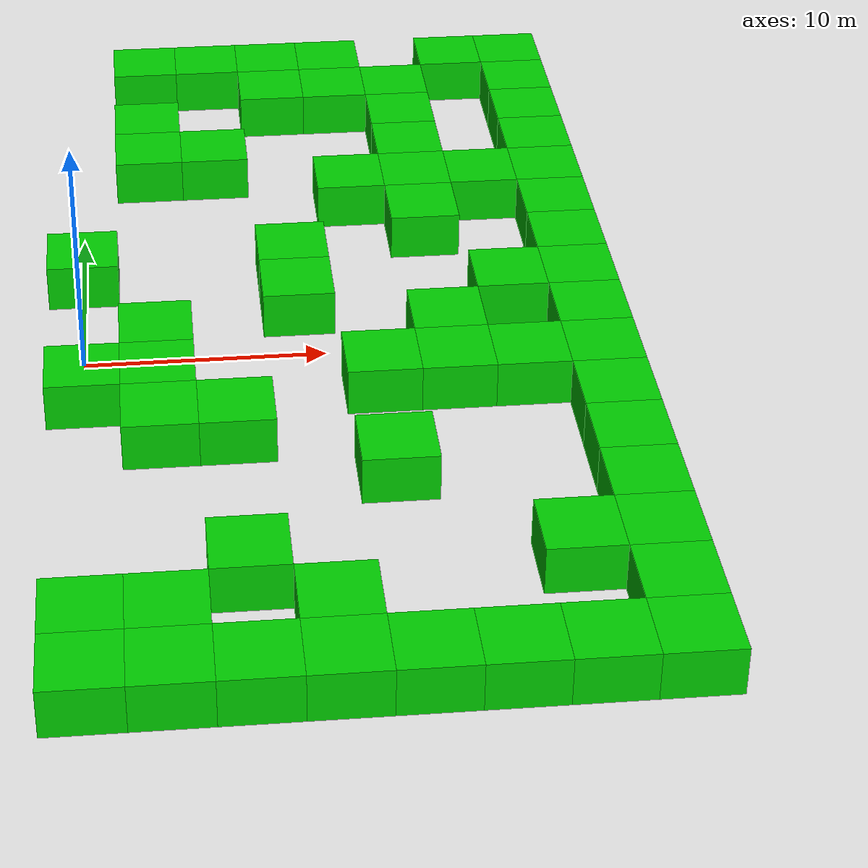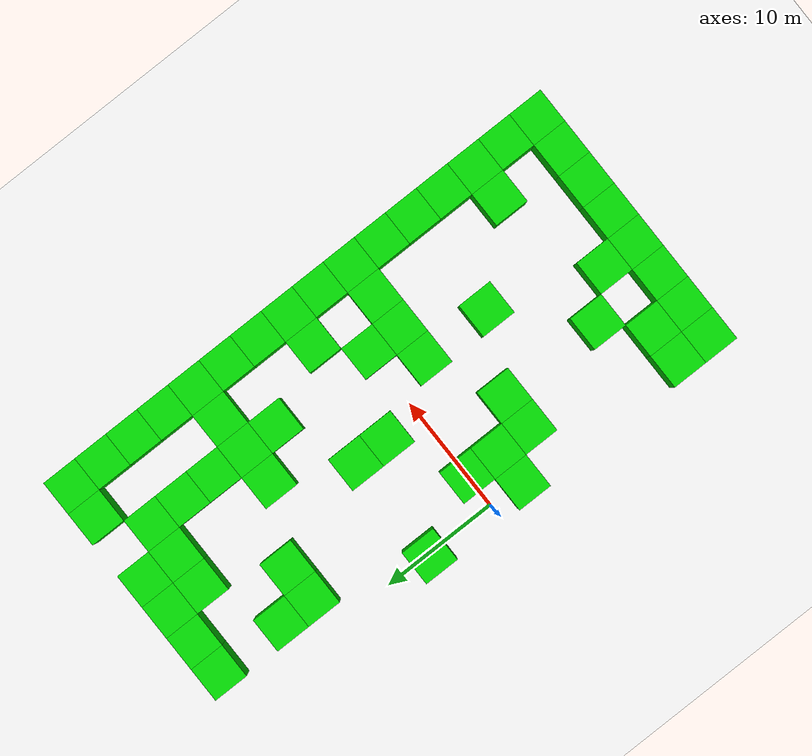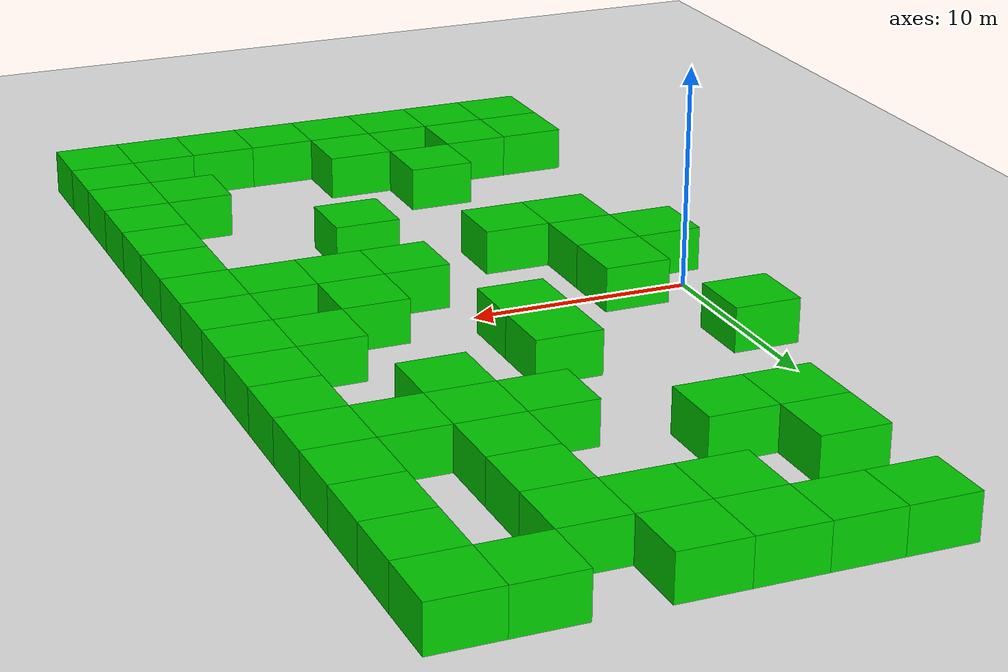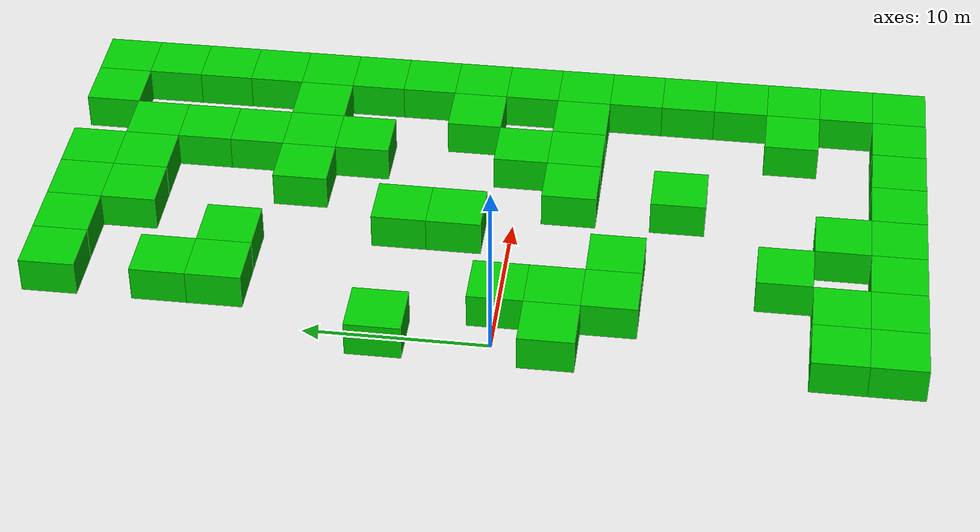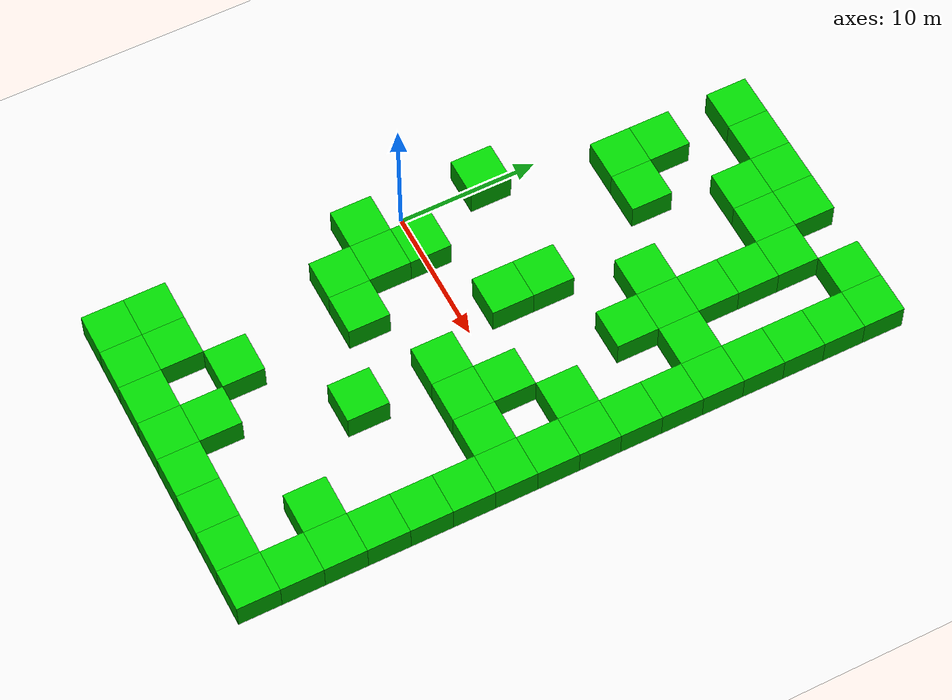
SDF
<sdf version="1.6">
 <world name="generated_maze">
  <model name="ground_plane">
   <static>true</static>
   <link name="link">
    <collision name="collision">
     <geometry><plane><normal>0 0 1</normal><size>300 300</size></plane></geometry>
    </collision>
    <visual name="visual">
     <geometry><plane><normal>0 0 1</normal><size>300 300</size></plane></geometry>
     <material>
      <ambient>0.9 0.9 0.9 1</ambient>
      <diffuse>0.9 0.9 0.9 1</diffuse>
      <specular>0.3 0.3 0.3 1</specular>
     </material>
    </visual>
   </link>
  </model>
  <model name="wall_0_9">
   <static>true</static>
   <pose>3.0 24.0 1.00 0 0 0</pose>
   <link name="link">
    <collision name="collision"><geometry><box><size>3.0 3.0 2.0</size></box></geometry></collision>
    <visual name="visual">
     <geometry><box><size>3.0 3.0 2.0</size></box></geometry>
     <material>
      <ambient>0.0 0.8 0.0 1</ambient>
      <diffuse>0.0 0.8 0.0 1</diffuse>
      <specular>0.1 0.1 0.1 1</specular>
     </material>
    </visual>
   </link>
  </model>
  <model name="wall_0_10">
   <static>true</static>
   <pose>6.0 24.0 1.00 0 0 0</pose>
   <link name="link">
    <collision name="collision"><geometry><box><size>3.0 3.0 2.0</size></box></geometry></collision>
    <visual name="visual">
     <geometry><box><size>3.0 3.0 2.0</size></box></geometry>
     <material>
      <ambient>0.0 0.8 0.0 1</ambient>
      <diffuse>0.0 0.8 0.0 1</diffuse>
      <specular>0.1 0.1 0.1 1</specular>
     </material>
    </visual>
   </link>
  </model>
  <model name="wall_0_11">
   <static>true</static>
   <pose>9.0 24.0 1.00 0 0 0</pose>
   <link name="link">
    <collision name="collision"><geometry><box><size>3.0 3.0 2.0</size></box></geometry></collision>
    <visual name="visual">
     <geometry><box><size>3.0 3.0 2.0</size></box></geometry>
     <material>
      <ambient>0.0 0.8 0.0 1</ambient>
      <diffuse>0.0 0.8 0.0 1</diffuse>
      <specular>0.1 0.1 0.1 1</specular>
     </material>
    </visual>
   </link>
  </model>
  <model name="wall_0_12">
   <static>true</static>
   <pose>12.0 24.0 1.00 0 0 0</pose>
   <link name="link">
    <collision name="collision"><geometry><box><size>3.0 3.0 2.0</size></box></geometry></collision>
    <visual name="visual">
     <geometry><box><size>3.0 3.0 2.0</size></box></geometry>
     <material>
      <ambient>0.0 0.8 0.0 1</ambient>
      <diffuse>0.0 0.8 0.0 1</diffuse>
      <specular>0.1 0.1 0.1 1</specular>
     </material>
    </visual>
   </link>
  </model>
  <model name="wall_0_14">
   <static>true</static>
   <pose>18.0 24.0 1.00 0 0 0</pose>
   <link name="link">
    <collision name="collision"><geometry><box><size>3.0 3.0 2.0</size></box></geometry></collision>
    <visual name="visual">
     <geometry><box><size>3.0 3.0 2.0</size></box></geometry>
     <material>
      <ambient>0.0 0.8 0.0 1</ambient>
      <diffuse>0.0 0.8 0.0 1</diffuse>
      <specular>0.1 0.1 0.1 1</specular>
     </material>
    </visual>
   </link>
  </model>
  <model name="wall_0_15">
   <static>true</static>
   <pose>21.0 24.0 1.00 0 0 0</pose>
   <link name="link">
    <collision name="collision"><geometry><box><size>3.0 3.0 2.0</size></box></geometry></collision>
    <visual name="visual">
     <geometry><box><size>3.0 3.0 2.0</size></box></geometry>
     <material>
      <ambient>0.0 0.8 0.0 1</ambient>
      <diffuse>0.0 0.8 0.0 1</diffuse>
      <specular>0.1 0.1 0.1 1</specular>
     </material>
    </visual>
   </link>
  </model>
  <model name="wall_1_11">
   <static>true</static>
   <pose>9.0 21.0 1.00 0 0 0</pose>
   <link name="link">
    <collision name="collision"><geometry><box><size>3.0 3.0 2.0</size></box></geometry></collision>
    <visual name="visual">
     <geometry><box><size>3.0 3.0 2.0</size></box></geometry>
     <material>
      <ambient>0.0 0.8 0.0 1</ambient>
      <diffuse>0.0 0.8 0.0 1</diffuse>
      <specular>0.1 0.1 0.1 1</specular>
     </material>
    </visual>
   </link>
  </model>
  <model name="wall_1_12">
   <static>true</static>
   <pose>12.0 21.0 1.00 0 0 0</pose>
   <link name="link">
    <collision name="collision"><geometry><box><size>3.0 3.0 2.0</size></box></geometry></collision>
    <visual name="visual">
     <geometry><box><size>3.0 3.0 2.0</size></box></geometry>
     <material>
      <ambient>0.0 0.8 0.0 1</ambient>
      <diffuse>0.0 0.8 0.0 1</diffuse>
      <specular>0.1 0.1 0.1 1</specular>
     </material>
    </visual>
   </link>
  </model>
  <model name="wall_1_13">
   <static>true</static>
   <pose>15.0 21.0 1.00 0 0 0</pose>
   <link name="link">
    <collision name="collision"><geometry><box><size>3.0 3.0 2.0</size></box></geometry></collision>
    <visual name="visual">
     <geometry><box><size>3.0 3.0 2.0</size></box></geometry>
     <material>
      <ambient>0.0 0.8 0.0 1</ambient>
      <diffuse>0.0 0.8 0.0 1</diffuse>
      <specular>0.1 0.1 0.1 1</specular>
     </material>
    </visual>
   </link>
  </model>
  <model name="wall_1_15">
   <static>true</static>
   <pose>21.0 21.0 1.00 0 0 0</pose>
   <link name="link">
    <collision name="collision"><geometry><box><size>3.0 3.0 2.0</size></box></geometry></collision>
    <visual name="visual">
     <geometry><box><size>3.0 3.0 2.0</size></box></geometry>
     <material>
      <ambient>0.0 0.8 0.0 1</ambient>
      <diffuse>0.0 0.8 0.0 1</diffuse>
      <specular>0.1 0.1 0.1 1</specular>
     </material>
    </visual>
   </link>
  </model>
  <model name="wall_2_9">
   <static>true</static>
   <pose>3.0 18.0 1.00 0 0 0</pose>
   <link name="link">
    <collision name="collision"><geometry><box><size>3.0 3.0 2.0</size></box></geometry></collision>
    <visual name="visual">
     <geometry><box><size>3.0 3.0 2.0</size></box></geometry>
     <material>
      <ambient>0.0 0.8 0.0 1</ambient>
      <diffuse>0.0 0.8 0.0 1</diffuse>
      <specular>0.1 0.1 0.1 1</specular>
     </material>
    </visual>
   </link>
  </model>
  <model name="wall_2_13">
   <static>true</static>
   <pose>15.0 18.0 1.00 0 0 0</pose>
   <link name="link">
    <collision name="collision"><geometry><box><size>3.0 3.0 2.0</size></box></geometry></collision>
    <visual name="visual">
     <geometry><box><size>3.0 3.0 2.0</size></box></geometry>
     <material>
      <ambient>0.0 0.8 0.0 1</ambient>
      <diffuse>0.0 0.8 0.0 1</diffuse>
      <specular>0.1 0.1 0.1 1</specular>
     </material>
    </visual>
   </link>
  </model>
  <model name="wall_2_15">
   <static>true</static>
   <pose>21.0 18.0 1.00 0 0 0</pose>
   <link name="link">
    <collision name="collision"><geometry><box><size>3.0 3.0 2.0</size></box></geometry></collision>
    <visual name="visual">
     <geometry><box><size>3.0 3.0 2.0</size></box></geometry>
     <material>
      <ambient>0.0 0.8 0.0 1</ambient>
      <diffuse>0.0 0.8 0.0 1</diffuse>
      <specular>0.1 0.1 0.1 1</specular>
     </material>
    </visual>
   </link>
  </model>
  <model name="wall_3_9">
   <static>true</static>
   <pose>3.0 15.0 1.00 0 0 0</pose>
   <link name="link">
    <collision name="collision"><geometry><box><size>3.0 3.0 2.0</size></box></geometry></collision>
    <visual name="visual">
     <geometry><box><size>3.0 3.0 2.0</size></box></geometry>
     <material>
      <ambient>0.0 0.8 0.0 1</ambient>
      <diffuse>0.0 0.8 0.0 1</diffuse>
      <specular>0.1 0.1 0.1 1</specular>
     </material>
    </visual>
   </link>
  </model>
  <model name="wall_3_10">
   <static>true</static>
   <pose>6.0 15.0 1.00 0 0 0</pose>
   <link name="link">
    <collision name="collision"><geometry><box><size>3.0 3.0 2.0</size></box></geometry></collision>
    <visual name="visual">
     <geometry><box><size>3.0 3.0 2.0</size></box></geometry>
     <material>
      <ambient>0.0 0.8 0.0 1</ambient>
      <diffuse>0.0 0.8 0.0 1</diffuse>
      <specular>0.1 0.1 0.1 1</specular>
     </material>
    </visual>
   </link>
  </model>
  <model name="wall_3_13">
   <static>true</static>
   <pose>15.0 15.0 1.00 0 0 0</pose>
   <link name="link">
    <collision name="collision"><geometry><box><size>3.0 3.0 2.0</size></box></geometry></collision>
    <visual name="visual">
     <geometry><box><size>3.0 3.0 2.0</size></box></geometry>
     <material>
      <ambient>0.0 0.8 0.0 1</ambient>
      <diffuse>0.0 0.8 0.0 1</diffuse>
      <specular>0.1 0.1 0.1 1</specular>
     </material>
    </visual>
   </link>
  </model>
  <model name="wall_3_15">
   <static>true</static>
   <pose>21.0 15.0 1.00 0 0 0</pose>
   <link name="link">
    <collision name="collision"><geometry><box><size>3.0 3.0 2.0</size></box></geometry></collision>
    <visual name="visual">
     <geometry><box><size>3.0 3.0 2.0</size></box></geometry>
     <material>
      <ambient>0.0 0.8 0.0 1</ambient>
      <diffuse>0.0 0.8 0.0 1</diffuse>
      <specular>0.1 0.1 0.1 1</specular>
     </material>
    </visual>
   </link>
  </model>
  <model name="wall_4_12">
   <static>true</static>
   <pose>12.0 12.0 1.00 0 0 0</pose>
   <link name="link">
    <collision name="collision"><geometry><box><size>3.0 3.0 2.0</size></box></geometry></collision>
    <visual name="visual">
     <geometry><box><size>3.0 3.0 2.0</size></box></geometry>
     <material>
      <ambient>0.0 0.8 0.0 1</ambient>
      <diffuse>0.0 0.8 0.0 1</diffuse>
      <specular>0.1 0.1 0.1 1</specular>
     </material>
    </visual>
   </link>
  </model>
  <model name="wall_4_13">
   <static>true</static>
   <pose>15.0 12.0 1.00 0 0 0</pose>
   <link name="link">
    <collision name="collision"><geometry><box><size>3.0 3.0 2.0</size></box></geometry></collision>
    <visual name="visual">
     <geometry><box><size>3.0 3.0 2.0</size></box></geometry>
     <material>
      <ambient>0.0 0.8 0.0 1</ambient>
      <diffuse>0.0 0.8 0.0 1</diffuse>
      <specular>0.1 0.1 0.1 1</specular>
     </material>
    </visual>
   </link>
  </model>
  <model name="wall_4_14">
   <static>true</static>
   <pose>18.0 12.0 1.00 0 0 0</pose>
   <link name="link">
    <collision name="collision"><geometry><box><size>3.0 3.0 2.0</size></box></geometry></collision>
    <visual name="visual">
     <geometry><box><size>3.0 3.0 2.0</size></box></geometry>
     <material>
      <ambient>0.0 0.8 0.0 1</ambient>
      <diffuse>0.0 0.8 0.0 1</diffuse>
      <specular>0.1 0.1 0.1 1</specular>
     </material>
    </visual>
   </link>
  </model>
  <model name="wall_4_15">
   <static>true</static>
   <pose>21.0 12.0 1.00 0 0 0</pose>
   <link name="link">
    <collision name="collision"><geometry><box><size>3.0 3.0 2.0</size></box></geometry></collision>
    <visual name="visual">
     <geometry><box><size>3.0 3.0 2.0</size></box></geometry>
     <material>
      <ambient>0.0 0.8 0.0 1</ambient>
      <diffuse>0.0 0.8 0.0 1</diffuse>
      <specular>0.1 0.1 0.1 1</specular>
     </material>
    </visual>
   </link>
  </model>
  <model name="wall_5_13">
   <static>true</static>
   <pose>15.0 9.0 1.00 0 0 0</pose>
   <link name="link">
    <collision name="collision"><geometry><box><size>3.0 3.0 2.0</size></box></geometry></collision>
    <visual name="visual">
     <geometry><box><size>3.0 3.0 2.0</size></box></geometry>
     <material>
      <ambient>0.0 0.8 0.0 1</ambient>
      <diffuse>0.0 0.8 0.0 1</diffuse>
      <specular>0.1 0.1 0.1 1</specular>
     </material>
    </visual>
   </link>
  </model>
  <model name="wall_5_15">
   <static>true</static>
   <pose>21.0 9.0 1.00 0 0 0</pose>
   <link name="link">
    <collision name="collision"><geometry><box><size>3.0 3.0 2.0</size></box></geometry></collision>
    <visual name="visual">
     <geometry><box><size>3.0 3.0 2.0</size></box></geometry>
     <material>
      <ambient>0.0 0.8 0.0 1</ambient>
      <diffuse>0.0 0.8 0.0 1</diffuse>
      <specular>0.1 0.1 0.1 1</specular>
     </material>
    </visual>
   </link>
  </model>
  <model name="wall_6_8">
   <static>true</static>
   <pose>0.0 6.0 1.00 0 0 0</pose>
   <link name="link">
    <collision name="collision"><geometry><box><size>3.0 3.0 2.0</size></box></geometry></collision>
    <visual name="visual">
     <geometry><box><size>3.0 3.0 2.0</size></box></geometry>
     <material>
      <ambient>0.0 0.8 0.0 1</ambient>
      <diffuse>0.0 0.8 0.0 1</diffuse>
      <specular>0.1 0.1 0.1 1</specular>
     </material>
    </visual>
   </link>
  </model>
  <model name="wall_6_11">
   <static>true</static>
   <pose>9.0 6.0 1.00 0 0 0</pose>
   <link name="link">
    <collision name="collision"><geometry><box><size>3.0 3.0 2.0</size></box></geometry></collision>
    <visual name="visual">
     <geometry><box><size>3.0 3.0 2.0</size></box></geometry>
     <material>
      <ambient>0.0 0.8 0.0 1</ambient>
      <diffuse>0.0 0.8 0.0 1</diffuse>
      <specular>0.1 0.1 0.1 1</specular>
     </material>
    </visual>
   </link>
  </model>
  <model name="wall_6_15">
   <static>true</static>
   <pose>21.0 6.0 1.00 0 0 0</pose>
   <link name="link">
    <collision name="collision"><geometry><box><size>3.0 3.0 2.0</size></box></geometry></collision>
    <visual name="visual">
     <geometry><box><size>3.0 3.0 2.0</size></box></geometry>
     <material>
      <ambient>0.0 0.8 0.0 1</ambient>
      <diffuse>0.0 0.8 0.0 1</diffuse>
      <specular>0.1 0.1 0.1 1</specular>
     </material>
    </visual>
   </link>
  </model>
  <model name="wall_7_11">
   <static>true</static>
   <pose>9.0 3.0 1.00 0 0 0</pose>
   <link name="link">
    <collision name="collision"><geometry><box><size>3.0 3.0 2.0</size></box></geometry></collision>
    <visual name="visual">
     <geometry><box><size>3.0 3.0 2.0</size></box></geometry>
     <material>
      <ambient>0.0 0.8 0.0 1</ambient>
      <diffuse>0.0 0.8 0.0 1</diffuse>
      <specular>0.1 0.1 0.1 1</specular>
     </material>
    </visual>
   </link>
  </model>
  <model name="wall_7_14">
   <static>true</static>
   <pose>18.0 3.0 1.00 0 0 0</pose>
   <link name="link">
    <collision name="collision"><geometry><box><size>3.0 3.0 2.0</size></box></geometry></collision>
    <visual name="visual">
     <geometry><box><size>3.0 3.0 2.0</size></box></geometry>
     <material>
      <ambient>0.0 0.8 0.0 1</ambient>
      <diffuse>0.0 0.8 0.0 1</diffuse>
      <specular>0.1 0.1 0.1 1</specular>
     </material>
    </visual>
   </link>
  </model>
  <model name="wall_7_15">
   <static>true</static>
   <pose>21.0 3.0 1.00 0 0 0</pose>
   <link name="link">
    <collision name="collision"><geometry><box><size>3.0 3.0 2.0</size></box></geometry></collision>
    <visual name="visual">
     <geometry><box><size>3.0 3.0 2.0</size></box></geometry>
     <material>
      <ambient>0.0 0.8 0.0 1</ambient>
      <diffuse>0.0 0.8 0.0 1</diffuse>
      <specular>0.1 0.1 0.1 1</specular>
     </material>
    </visual>
   </link>
  </model>
  <model name="wall_8_9">
   <static>true</static>
   <pose>3.0 0.0 1.00 0 0 0</pose>
   <link name="link">
    <collision name="collision"><geometry><box><size>3.0 3.0 2.0</size></box></geometry></collision>
    <visual name="visual">
     <geometry><box><size>3.0 3.0 2.0</size></box></geometry>
     <material>
      <ambient>0.0 0.8 0.0 1</ambient>
      <diffuse>0.0 0.8 0.0 1</diffuse>
      <specular>0.1 0.1 0.1 1</specular>
     </material>
    </visual>
   </link>
  </model>
  <model name="wall_8_13">
   <static>true</static>
   <pose>15.0 0.0 1.00 0 0 0</pose>
   <link name="link">
    <collision name="collision"><geometry><box><size>3.0 3.0 2.0</size></box></geometry></collision>
    <visual name="visual">
     <geometry><box><size>3.0 3.0 2.0</size></box></geometry>
     <material>
      <ambient>0.0 0.8 0.0 1</ambient>
      <diffuse>0.0 0.8 0.0 1</diffuse>
      <specular>0.1 0.1 0.1 1</specular>
     </material>
    </visual>
   </link>
  </model>
  <model name="wall_8_15">
   <static>true</static>
   <pose>21.0 0.0 1.00 0 0 0</pose>
   <link name="link">
    <collision name="collision"><geometry><box><size>3.0 3.0 2.0</size></box></geometry></collision>
    <visual name="visual">
     <geometry><box><size>3.0 3.0 2.0</size></box></geometry>
     <material>
      <ambient>0.0 0.8 0.0 1</ambient>
      <diffuse>0.0 0.8 0.0 1</diffuse>
      <specular>0.1 0.1 0.1 1</specular>
     </material>
    </visual>
   </link>
  </model>
  <model name="wall_9_8">
   <static>true</static>
   <pose>0.0 -3.0 1.00 0 0 0</pose>
   <link name="link">
    <collision name="collision"><geometry><box><size>3.0 3.0 2.0</size></box></geometry></collision>
    <visual name="visual">
     <geometry><box><size>3.0 3.0 2.0</size></box></geometry>
     <material>
      <ambient>0.0 0.8 0.0 1</ambient>
      <diffuse>0.0 0.8 0.0 1</diffuse>
      <specular>0.1 0.1 0.1 1</specular>
     </material>
    </visual>
   </link>
  </model>
  <model name="wall_9_9">
   <static>true</static>
   <pose>3.0 -3.0 1.00 0 0 0</pose>
   <link name="link">
    <collision name="collision"><geometry><box><size>3.0 3.0 2.0</size></box></geometry></collision>
    <visual name="visual">
     <geometry><box><size>3.0 3.0 2.0</size></box></geometry>
     <material>
      <ambient>0.0 0.8 0.0 1</ambient>
      <diffuse>0.0 0.8 0.0 1</diffuse>
      <specular>0.1 0.1 0.1 1</specular>
     </material>
    </visual>
   </link>
  </model>
  <model name="wall_9_12">
   <static>true</static>
   <pose>12.0 -3.0 1.00 0 0 0</pose>
   <link name="link">
    <collision name="collision"><geometry><box><size>3.0 3.0 2.0</size></box></geometry></collision>
    <visual name="visual">
     <geometry><box><size>3.0 3.0 2.0</size></box></geometry>
     <material>
      <ambient>0.0 0.8 0.0 1</ambient>
      <diffuse>0.0 0.8 0.0 1</diffuse>
      <specular>0.1 0.1 0.1 1</specular>
     </material>
    </visual>
   </link>
  </model>
  <model name="wall_9_13">
   <static>true</static>
   <pose>15.0 -3.0 1.00 0 0 0</pose>
   <link name="link">
    <collision name="collision"><geometry><box><size>3.0 3.0 2.0</size></box></geometry></collision>
    <visual name="visual">
     <geometry><box><size>3.0 3.0 2.0</size></box></geometry>
     <material>
      <ambient>0.0 0.8 0.0 1</ambient>
      <diffuse>0.0 0.8 0.0 1</diffuse>
      <specular>0.1 0.1 0.1 1</specular>
     </material>
    </visual>
   </link>
  </model>
  <model name="wall_9_14">
   <static>true</static>
   <pose>18.0 -3.0 1.00 0 0 0</pose>
   <link name="link">
    <collision name="collision"><geometry><box><size>3.0 3.0 2.0</size></box></geometry></collision>
    <visual name="visual">
     <geometry><box><size>3.0 3.0 2.0</size></box></geometry>
     <material>
      <ambient>0.0 0.8 0.0 1</ambient>
      <diffuse>0.0 0.8 0.0 1</diffuse>
      <specular>0.1 0.1 0.1 1</specular>
     </material>
    </visual>
   </link>
  </model>
  <model name="wall_9_15">
   <static>true</static>
   <pose>21.0 -3.0 1.00 0 0 0</pose>
   <link name="link">
    <collision name="collision"><geometry><box><size>3.0 3.0 2.0</size></box></geometry></collision>
    <visual name="visual">
     <geometry><box><size>3.0 3.0 2.0</size></box></geometry>
     <material>
      <ambient>0.0 0.8 0.0 1</ambient>
      <diffuse>0.0 0.8 0.0 1</diffuse>
      <specular>0.1 0.1 0.1 1</specular>
     </material>
    </visual>
   </link>
  </model>
  <model name="wall_10_9">
   <static>true</static>
   <pose>3.0 -6.0 1.00 0 0 0</pose>
   <link name="link">
    <collision name="collision"><geometry><box><size>3.0 3.0 2.0</size></box></geometry></collision>
    <visual name="visual">
     <geometry><box><size>3.0 3.0 2.0</size></box></geometry>
     <material>
      <ambient>0.0 0.8 0.0 1</ambient>
      <diffuse>0.0 0.8 0.0 1</diffuse>
      <specular>0.1 0.1 0.1 1</specular>
     </material>
    </visual>
   </link>
  </model>
  <model name="wall_10_10">
   <static>true</static>
   <pose>6.0 -6.0 1.00 0 0 0</pose>
   <link name="link">
    <collision name="collision"><geometry><box><size>3.0 3.0 2.0</size></box></geometry></collision>
    <visual name="visual">
     <geometry><box><size>3.0 3.0 2.0</size></box></geometry>
     <material>
      <ambient>0.0 0.8 0.0 1</ambient>
      <diffuse>0.0 0.8 0.0 1</diffuse>
      <specular>0.1 0.1 0.1 1</specular>
     </material>
    </visual>
   </link>
  </model>
  <model name="wall_10_15">
   <static>true</static>
   <pose>21.0 -6.0 1.00 0 0 0</pose>
   <link name="link">
    <collision name="collision"><geometry><box><size>3.0 3.0 2.0</size></box></geometry></collision>
    <visual name="visual">
     <geometry><box><size>3.0 3.0 2.0</size></box></geometry>
     <material>
      <ambient>0.0 0.8 0.0 1</ambient>
      <diffuse>0.0 0.8 0.0 1</diffuse>
      <specular>0.1 0.1 0.1 1</specular>
     </material>
    </visual>
   </link>
  </model>
  <model name="wall_11_12">
   <static>true</static>
   <pose>12.0 -9.0 1.00 0 0 0</pose>
   <link name="link">
    <collision name="collision"><geometry><box><size>3.0 3.0 2.0</size></box></geometry></collision>
    <visual name="visual">
     <geometry><box><size>3.0 3.0 2.0</size></box></geometry>
     <material>
      <ambient>0.0 0.8 0.0 1</ambient>
      <diffuse>0.0 0.8 0.0 1</diffuse>
      <specular>0.1 0.1 0.1 1</specular>
     </material>
    </visual>
   </link>
  </model>
  <model name="wall_11_15">
   <static>true</static>
   <pose>21.0 -9.0 1.00 0 0 0</pose>
   <link name="link">
    <collision name="collision"><geometry><box><size>3.0 3.0 2.0</size></box></geometry></collision>
    <visual name="visual">
     <geometry><box><size>3.0 3.0 2.0</size></box></geometry>
     <material>
      <ambient>0.0 0.8 0.0 1</ambient>
      <diffuse>0.0 0.8 0.0 1</diffuse>
      <specular>0.1 0.1 0.1 1</specular>
     </material>
    </visual>
   </link>
  </model>
  <model name="wall_12_15">
   <static>true</static>
   <pose>21.0 -12.0 1.00 0 0 0</pose>
   <link name="link">
    <collision name="collision"><geometry><box><size>3.0 3.0 2.0</size></box></geometry></collision>
    <visual name="visual">
     <geometry><box><size>3.0 3.0 2.0</size></box></geometry>
     <material>
      <ambient>0.0 0.8 0.0 1</ambient>
      <diffuse>0.0 0.8 0.0 1</diffuse>
      <specular>0.1 0.1 0.1 1</specular>
     </material>
    </visual>
   </link>
  </model>
  <model name="wall_13_10">
   <static>true</static>
   <pose>6.0 -15.0 1.00 0 0 0</pose>
   <link name="link">
    <collision name="collision"><geometry><box><size>3.0 3.0 2.0</size></box></geometry></collision>
    <visual name="visual">
     <geometry><box><size>3.0 3.0 2.0</size></box></geometry>
     <material>
      <ambient>0.0 0.8 0.0 1</ambient>
      <diffuse>0.0 0.8 0.0 1</diffuse>
      <specular>0.1 0.1 0.1 1</specular>
     </material>
    </visual>
   </link>
  </model>
  <model name="wall_13_14">
   <static>true</static>
   <pose>18.0 -15.0 1.00 0 0 0</pose>
   <link name="link">
    <collision name="collision"><geometry><box><size>3.0 3.0 2.0</size></box></geometry></collision>
    <visual name="visual">
     <geometry><box><size>3.0 3.0 2.0</size></box></geometry>
     <material>
      <ambient>0.0 0.8 0.0 1</ambient>
      <diffuse>0.0 0.8 0.0 1</diffuse>
      <specular>0.1 0.1 0.1 1</specular>
     </material>
    </visual>
   </link>
  </model>
  <model name="wall_13_15">
   <static>true</static>
   <pose>21.0 -15.0 1.00 0 0 0</pose>
   <link name="link">
    <collision name="collision"><geometry><box><size>3.0 3.0 2.0</size></box></geometry></collision>
    <visual name="visual">
     <geometry><box><size>3.0 3.0 2.0</size></box></geometry>
     <material>
      <ambient>0.0 0.8 0.0 1</ambient>
      <diffuse>0.0 0.8 0.0 1</diffuse>
      <specular>0.1 0.1 0.1 1</specular>
     </material>
    </visual>
   </link>
  </model>
  <model name="wall_14_8">
   <static>true</static>
   <pose>0.0 -18.0 1.00 0 0 0</pose>
   <link name="link">
    <collision name="collision"><geometry><box><size>3.0 3.0 2.0</size></box></geometry></collision>
    <visual name="visual">
     <geometry><box><size>3.0 3.0 2.0</size></box></geometry>
     <material>
      <ambient>0.0 0.8 0.0 1</ambient>
      <diffuse>0.0 0.8 0.0 1</diffuse>
      <specular>0.1 0.1 0.1 1</specular>
     </material>
    </visual>
   </link>
  </model>
  <model name="wall_14_9">
   <static>true</static>
   <pose>3.0 -18.0 1.00 0 0 0</pose>
   <link name="link">
    <collision name="collision"><geometry><box><size>3.0 3.0 2.0</size></box></geometry></collision>
    <visual name="visual">
     <geometry><box><size>3.0 3.0 2.0</size></box></geometry>
     <material>
      <ambient>0.0 0.8 0.0 1</ambient>
      <diffuse>0.0 0.8 0.0 1</diffuse>
      <specular>0.1 0.1 0.1 1</specular>
     </material>
    </visual>
   </link>
  </model>
  <model name="wall_14_11">
   <static>true</static>
   <pose>9.0 -18.0 1.00 0 0 0</pose>
   <link name="link">
    <collision name="collision"><geometry><box><size>3.0 3.0 2.0</size></box></geometry></collision>
    <visual name="visual">
     <geometry><box><size>3.0 3.0 2.0</size></box></geometry>
     <material>
      <ambient>0.0 0.8 0.0 1</ambient>
      <diffuse>0.0 0.8 0.0 1</diffuse>
      <specular>0.1 0.1 0.1 1</specular>
     </material>
    </visual>
   </link>
  </model>
  <model name="wall_14_15">
   <static>true</static>
   <pose>21.0 -18.0 1.00 0 0 0</pose>
   <link name="link">
    <collision name="collision"><geometry><box><size>3.0 3.0 2.0</size></box></geometry></collision>
    <visual name="visual">
     <geometry><box><size>3.0 3.0 2.0</size></box></geometry>
     <material>
      <ambient>0.0 0.8 0.0 1</ambient>
      <diffuse>0.0 0.8 0.0 1</diffuse>
      <specular>0.1 0.1 0.1 1</specular>
     </material>
    </visual>
   </link>
  </model>
  <model name="wall_15_8">
   <static>true</static>
   <pose>0.0 -21.0 1.00 0 0 0</pose>
   <link name="link">
    <collision name="collision"><geometry><box><size>3.0 3.0 2.0</size></box></geometry></collision>
    <visual name="visual">
     <geometry><box><size>3.0 3.0 2.0</size></box></geometry>
     <material>
      <ambient>0.0 0.8 0.0 1</ambient>
      <diffuse>0.0 0.8 0.0 1</diffuse>
      <specular>0.1 0.1 0.1 1</specular>
     </material>
    </visual>
   </link>
  </model>
  <model name="wall_15_9">
   <static>true</static>
   <pose>3.0 -21.0 1.00 0 0 0</pose>
   <link name="link">
    <collision name="collision"><geometry><box><size>3.0 3.0 2.0</size></box></geometry></collision>
    <visual name="visual">
     <geometry><box><size>3.0 3.0 2.0</size></box></geometry>
     <material>
      <ambient>0.0 0.8 0.0 1</ambient>
      <diffuse>0.0 0.8 0.0 1</diffuse>
      <specular>0.1 0.1 0.1 1</specular>
     </material>
    </visual>
   </link>
  </model>
  <model name="wall_15_10">
   <static>true</static>
   <pose>6.0 -21.0 1.00 0 0 0</pose>
   <link name="link">
    <collision name="collision"><geometry><box><size>3.0 3.0 2.0</size></box></geometry></collision>
    <visual name="visual">
     <geometry><box><size>3.0 3.0 2.0</size></box></geometry>
     <material>
      <ambient>0.0 0.8 0.0 1</ambient>
      <diffuse>0.0 0.8 0.0 1</diffuse>
      <specular>0.1 0.1 0.1 1</specular>
     </material>
    </visual>
   </link>
  </model>
  <model name="wall_15_11">
   <static>true</static>
   <pose>9.0 -21.0 1.00 0 0 0</pose>
   <link name="link">
    <collision name="collision"><geometry><box><size>3.0 3.0 2.0</size></box></geometry></collision>
    <visual name="visual">
     <geometry><box><size>3.0 3.0 2.0</size></box></geometry>
     <material>
      <ambient>0.0 0.8 0.0 1</ambient>
      <diffuse>0.0 0.8 0.0 1</diffuse>
      <specular>0.1 0.1 0.1 1</specular>
     </material>
    </visual>
   </link>
  </model>
  <model name="wall_15_12">
   <static>true</static>
   <pose>12.0 -21.0 1.00 0 0 0</pose>
   <link name="link">
    <collision name="collision"><geometry><box><size>3.0 3.0 2.0</size></box></geometry></collision>
    <visual name="visual">
     <geometry><box><size>3.0 3.0 2.0</size></box></geometry>
     <material>
      <ambient>0.0 0.8 0.0 1</ambient>
      <diffuse>0.0 0.8 0.0 1</diffuse>
      <specular>0.1 0.1 0.1 1</specular>
     </material>
    </visual>
   </link>
  </model>
  <model name="wall_15_13">
   <static>true</static>
   <pose>15.0 -21.0 1.00 0 0 0</pose>
   <link name="link">
    <collision name="collision"><geometry><box><size>3.0 3.0 2.0</size></box></geometry></collision>
    <visual name="visual">
     <geometry><box><size>3.0 3.0 2.0</size></box></geometry>
     <material>
      <ambient>0.0 0.8 0.0 1</ambient>
      <diffuse>0.0 0.8 0.0 1</diffuse>
      <specular>0.1 0.1 0.1 1</specular>
     </material>
    </visual>
   </link>
  </model>
  <model name="wall_15_14">
   <static>true</static>
   <pose>18.0 -21.0 1.00 0 0 0</pose>
   <link name="link">
    <collision name="collision"><geometry><box><size>3.0 3.0 2.0</size></box></geometry></collision>
    <visual name="visual">
     <geometry><box><size>3.0 3.0 2.0</size></box></geometry>
     <material>
      <ambient>0.0 0.8 0.0 1</ambient>
      <diffuse>0.0 0.8 0.0 1</diffuse>
      <specular>0.1 0.1 0.1 1</specular>
     </material>
    </visual>
   </link>
  </model>
  <model name="wall_15_15">
   <static>true</static>
   <pose>21.0 -21.0 1.00 0 0 0</pose>
   <link name="link">
    <collision name="collision"><geometry><box><size>3.0 3.0 2.0</size></box></geometry></collision>
    <visual name="visual">
     <geometry><box><size>3.0 3.0 2.0</size></box></geometry>
     <material>
      <ambient>0.0 0.8 0.0 1</ambient>
      <diffuse>0.0 0.8 0.0 1</diffuse>
      <specular>0.1 0.1 0.1 1</specular>
     </material>
    </visual>
   </link>
  </model>
 </world>
</sdf>
